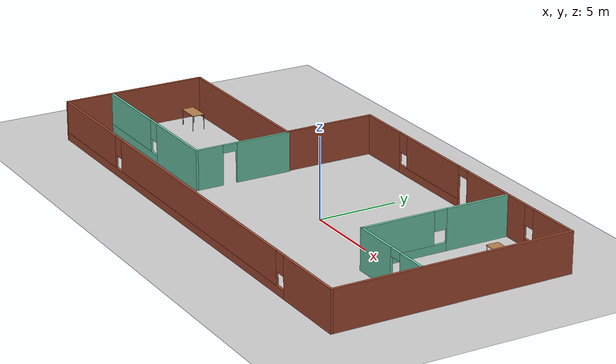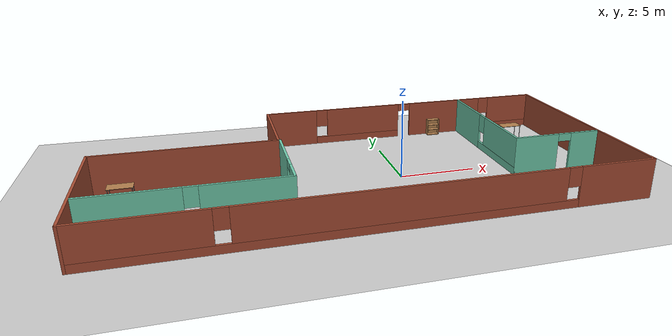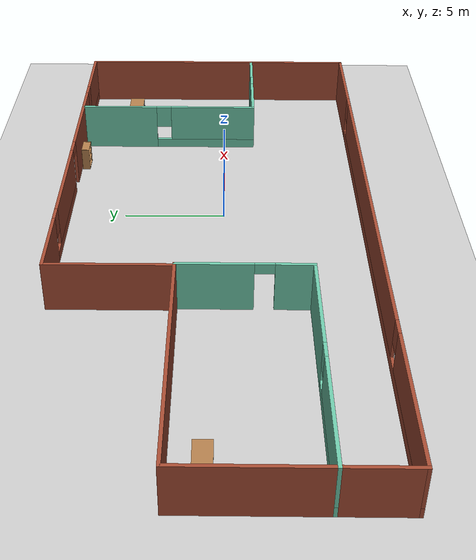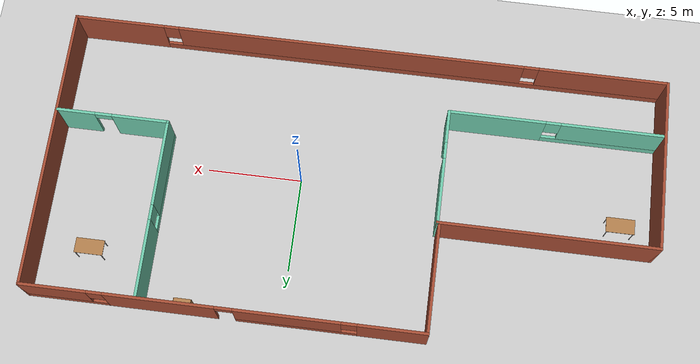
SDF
<sdf version="1.6">
 <world name="default">
  <light name="sun" type="directional">
   <pose>0 0 10 0 -0 0</pose>
   <diffuse>0.8 0.8 0.8 1</diffuse>
   <specular>0.2 0.2 0.2 1</specular>
   <attenuation>
    <range>1000</range>
    <constant>0.9</constant>
    <linear>0.01</linear>
    <quadratic>0.001</quadratic>
   </attenuation>
   <direction>-0.5 0.1 -0.9</direction>
  </light>
  <model name="ground_plane">
   <static>1</static>
   <link name="link">
    <collision name="collision">
     <geometry><plane><normal>0 0 1</normal><size>100 100</size></plane></geometry>
     <surface>
      <contact><collide_bitmask>65535</collide_bitmask></contact>
      <friction><ode><mu>100</mu><mu2>50</mu2></ode></friction>
     </surface>
    </collision>
    <visual name="visual">
     <cast_shadows>0</cast_shadows>
     <geometry><plane><normal>0 0 1</normal><size>100 100</size></plane></geometry>
     <material>
      <script><uri>file://media/materials/scripts/gazebo.material</uri><name>Gazebo/Grey</name></script>
     </material>
    </visual>
   </link>
  </model>
  <gravity>0 0 -9.8</gravity>
  <magnetic_field>6e-06 2.3e-05 -4.2e-05</magnetic_field>
  <atmosphere type="adiabatic"/>
  <physics name="default_physics" default="0" type="ode">
   <max_step_size>0.001</max_step_size>
   <real_time_factor>1</real_time_factor>
   <real_time_update_rate>1000</real_time_update_rate>
  </physics>
  <scene><ambient>0.4 0.4 0.4 1</ambient><background>0.7 0.7 0.7 1</background><shadows>1</shadows></scene>
  <spherical_coordinates>
   <surface_model>EARTH_WGS84</surface_model>
   <latitude_deg>0</latitude_deg>
   <longitude_deg>0</longitude_deg>
   <elevation>0</elevation>
   <heading_deg>0</heading_deg>
  </spherical_coordinates>
  <model name="building">
   <pose>-2.81591 0.44118 0 0 -0 0</pose>
   <link name="Wall_0">
    <collision name="Wall_0_Collision">
     <geometry><box><size>5.75 0.15 2.5</size></box></geometry>
     <pose>0 0 1.25 0 -0 0</pose>
    </collision>
    <visual name="Wall_0_Visual">
     <pose>0 0 1.25 0 -0 0</pose>
     <geometry><box><size>5.75 0.15 2.5</size></box></geometry>
     <material>
      <script><uri>file://media/materials/scripts/gazebo.material</uri><name>Gazebo/Bricks</name></script>
      <ambient>1 1 1 1</ambient>
     </material>
     <meta><layer>0</layer></meta>
    </visual>
    <pose>-4.675 4.625 0 0 -0 1.5708</pose>
   </link>
   <link name="Wall_1">
    <pose>5.625 7.425 0 0 -0 0</pose>
    <visual name="Wall_1_Visual_0">
     <pose>-8.57489 0 1.25 0 -0 0</pose>
     <geometry><box><size>3.60022 0.15 2.5</size></box></geometry>
     <material>
      <script><uri>file://media/materials/scripts/gazebo.material</uri><name>Gazebo/Bricks</name></script>
      <ambient>1 1 1 1</ambient>
     </material>
     <meta><layer>0</layer></meta>
    </visual>
    <collision name="Wall_1_Collision_0">
     <geometry><box><size>3.60022 0.15 2.5</size></box></geometry>
     <pose>-8.57489 0 1.25 0 -0 0</pose>
    </collision>
    <visual name="Wall_1_Visual_1">
     <pose>3.22716 0 1.25 0 -0 0</pose>
     <geometry><box><size>5.6773 0.15 2.5</size></box></geometry>
     <material>
      <script><uri>file://media/materials/scripts/gazebo.material</uri><name>Gazebo/Bricks</name></script>
      <ambient>1 1 1 1</ambient>
     </material>
     <meta><layer>0</layer></meta>
    </visual>
    <collision name="Wall_1_Collision_1">
     <geometry><box><size>5.6773 0.15 2.5</size></box></geometry>
     <pose>3.22716 0 1.25 0 -0 0</pose>
    </collision>
    <visual name="Wall_1_Visual_2">
     <pose>-3.64314 0 0.25 0 -0 0</pose>
     <geometry><box><size>6.2633 0.15 0.5</size></box></geometry>
     <material>
      <script><uri>file://media/materials/scripts/gazebo.material</uri><name>Gazebo/Bricks</name></script>
      <ambient>1 1 1 1</ambient>
     </material>
     <meta><layer>0</layer></meta>
    </visual>
    <collision name="Wall_1_Collision_2">
     <geometry><box><size>6.2633 0.15 0.5</size></box></geometry>
     <pose>-3.64314 0 0.25 0 -0 0</pose>
    </collision>
    <visual name="Wall_1_Visual_3">
     <pose>8.22041 0 0.25 0 -0 0</pose>
     <geometry><box><size>4.30918 0.15 0.5</size></box></geometry>
     <material>
      <script><uri>file://media/materials/scripts/gazebo.material</uri><name>Gazebo/Bricks</name></script>
      <ambient>1 1 1 1</ambient>
     </material>
     <meta><layer>0</layer></meta>
    </visual>
    <collision name="Wall_1_Collision_3">
     <geometry><box><size>4.30918 0.15 0.5</size></box></geometry>
     <pose>8.22041 0 0.25 0 -0 0</pose>
    </collision>
    <visual name="Wall_1_Visual_4">
     <pose>-3.24314 0 1.5 0 -0 0</pose>
     <geometry><box><size>5.46329 0.15 2</size></box></geometry>
     <material>
      <script><uri>file://media/materials/scripts/gazebo.material</uri><name>Gazebo/Bricks</name></script>
      <ambient>1 1 1 1</ambient>
     </material>
     <meta><layer>0</layer></meta>
    </visual>
    <collision name="Wall_1_Collision_4">
     <geometry><box><size>5.46329 0.15 2</size></box></geometry>
     <pose>-3.24314 0 1.5 0 -0 0</pose>
    </collision>
    <visual name="Wall_1_Visual_5">
     <pose>-3.24314 0 1.5 0 -0 0</pose>
     <geometry><box><size>5.46329 0.15 2</size></box></geometry>
     <material>
      <script><uri>file://media/materials/scripts/gazebo.material</uri><name>Gazebo/Bricks</name></script>
      <ambient>1 1 1 1</ambient>
     </material>
     <meta><layer>0</layer></meta>
    </visual>
    <collision name="Wall_1_Collision_5">
     <geometry><box><size>5.46329 0.15 2</size></box></geometry>
     <pose>-3.24314 0 1.5 0 -0 0</pose>
    </collision>
    <visual name="Wall_1_Visual_6">
     <pose>8.62041 0 1.5 0 -0 0</pose>
     <geometry><box><size>3.50918 0.15 2</size></box></geometry>
     <material>
      <script><uri>file://media/materials/scripts/gazebo.material</uri><name>Gazebo/Bricks</name></script>
      <ambient>1 1 1 1</ambient>
     </material>
     <meta><layer>0</layer></meta>
    </visual>
    <collision name="Wall_1_Collision_6">
     <geometry><box><size>3.50918 0.15 2</size></box></geometry>
     <pose>8.62041 0 1.5 0 -0 0</pose>
    </collision>
    <visual name="Wall_1_Visual_7">
     <pose>-6.37478 0 1.9 0 -0 0</pose>
     <geometry><box><size>0.8 0.15 1.2</size></box></geometry>
     <material>
      <script><uri>file://media/materials/scripts/gazebo.material</uri><name>Gazebo/Bricks</name></script>
      <ambient>1 1 1 1</ambient>
     </material>
     <meta><layer>0</layer></meta>
    </visual>
    <collision name="Wall_1_Collision_7">
     <geometry><box><size>0.8 0.15 1.2</size></box></geometry>
     <pose>-6.37478 0 1.9 0 -0 0</pose>
    </collision>
    <visual name="Wall_1_Visual_8">
     <pose>6.46582 0 1.9 0 -0 0</pose>
     <geometry><box><size>0.8 0.15 1.2</size></box></geometry>
     <material>
      <script><uri>file://media/materials/scripts/gazebo.material</uri><name>Gazebo/Bricks</name></script>
      <ambient>1 1 1 1</ambient>
     </material>
     <meta><layer>0</layer></meta>
    </visual>
    <collision name="Wall_1_Collision_8">
     <geometry><box><size>0.8 0.15 1.2</size></box></geometry>
     <pose>6.46582 0 1.9 0 -0 0</pose>
    </collision>
    <visual name="Wall_1_Visual_9">
     <pose>-0.061489 0 2.25 0 -0 0</pose>
     <geometry><box><size>0.9 0.15 0.5</size></box></geometry>
     <material>
      <script><uri>file://media/materials/scripts/gazebo.material</uri><name>Gazebo/Bricks</name></script>
      <ambient>1 1 1 1</ambient>
     </material>
     <meta><layer>0</layer></meta>
    </visual>
    <collision name="Wall_1_Collision_9">
     <geometry><box><size>0.9 0.15 0.5</size></box></geometry>
     <pose>-0.061489 0 2.25 0 -0 0</pose>
    </collision>
    <visual name="Wall_1_Visual_10">
     <pose>-0.061489 0 2.25 0 -0 0</pose>
     <geometry><box><size>0.9 0.15 0.5</size></box></geometry>
     <material>
      <script><uri>file://media/materials/scripts/gazebo.material</uri><name>Gazebo/Bricks</name></script>
      <ambient>1 1 1 1</ambient>
     </material>
     <meta><layer>0</layer></meta>
    </visual>
    <collision name="Wall_1_Collision_10">
     <geometry><box><size>0.9 0.15 0.5</size></box></geometry>
     <pose>-0.061489 0 2.25 0 -0 0</pose>
    </collision>
   </link>
   <link name="Wall_10">
    <pose>10.0042 2.65278 0 0 0 -1.5708</pose>
    <visual name="Wall_10_Visual_0">
     <pose>-2.7189 0 1.25 0 -0 0</pose>
     <geometry><box><size>4.0622 0.15 2.5</size></box></geometry>
     <material>
      <script><uri>file://media/materials/scripts/gazebo.material</uri><name>Gazebo/Grey</name></script>
      <ambient>0.435294 0.796078 0.67451 1</ambient>
     </material>
     <meta><layer>0</layer></meta>
    </visual>
    <collision name="Wall_10_Collision_0">
     <geometry><box><size>4.0622 0.15 2.5</size></box></geometry>
     <pose>-2.7189 0 1.25 0 -0 0</pose>
    </collision>
    <visual name="Wall_10_Visual_1">
     <pose>2.0311 0 0.25 0 -0 0</pose>
     <geometry><box><size>5.4378 0.15 0.5</size></box></geometry>
     <material>
      <script><uri>file://media/materials/scripts/gazebo.material</uri><name>Gazebo/Grey</name></script>
      <ambient>0.435294 0.796078 0.67451 1</ambient>
     </material>
     <meta><layer>0</layer></meta>
    </visual>
    <collision name="Wall_10_Collision_1">
     <geometry><box><size>5.4378 0.15 0.5</size></box></geometry>
     <pose>2.0311 0 0.25 0 -0 0</pose>
    </collision>
    <visual name="Wall_10_Visual_2">
     <pose>2.4311 0 1.5 0 -0 0</pose>
     <geometry><box><size>4.63779 0.15 2</size></box></geometry>
     <material>
      <script><uri>file://media/materials/scripts/gazebo.material</uri><name>Gazebo/Grey</name></script>
      <ambient>0.435294 0.796078 0.67451 1</ambient>
     </material>
     <meta><layer>0</layer></meta>
    </visual>
    <collision name="Wall_10_Collision_2">
     <geometry><box><size>4.63779 0.15 2</size></box></geometry>
     <pose>2.4311 0 1.5 0 -0 0</pose>
    </collision>
    <visual name="Wall_10_Visual_3">
     <pose>-0.287795 0 1.9 0 -0 0</pose>
     <geometry><box><size>0.8 0.15 1.2</size></box></geometry>
     <material>
      <script><uri>file://media/materials/scripts/gazebo.material</uri><name>Gazebo/Grey</name></script>
      <ambient>0.435294 0.796078 0.67451 1</ambient>
     </material>
     <meta><layer>0</layer></meta>
    </visual>
    <collision name="Wall_10_Collision_3">
     <geometry><box><size>0.8 0.15 1.2</size></box></geometry>
     <pose>-0.287795 0 1.9 0 -0 0</pose>
    </collision>
   </link>
   <link name="Wall_11">
    <pose>12.9292 -2.02222 0 0 -0 0</pose>
    <visual name="Wall_11_Visual_0">
     <pose>-1.47542 0 1.25 0 -0 0</pose>
     <geometry><box><size>3.04916 0.15 2.5</size></box></geometry>
     <material>
      <script><uri>file://media/materials/scripts/gazebo.material</uri><name>Gazebo/Grey</name></script>
      <ambient>0.435294 0.796078 0.67451 1</ambient>
     </material>
     <meta><layer>0</layer></meta>
    </visual>
    <collision name="Wall_11_Collision_0">
     <geometry><box><size>3.04916 0.15 2.5</size></box></geometry>
     <pose>-1.47542 0 1.25 0 -0 0</pose>
    </collision>
    <visual name="Wall_11_Visual_1">
     <pose>1.97458 0 1.25 0 -0 0</pose>
     <geometry><box><size>2.05084 0.15 2.5</size></box></geometry>
     <material>
      <script><uri>file://media/materials/scripts/gazebo.material</uri><name>Gazebo/Grey</name></script>
      <ambient>0.435294 0.796078 0.67451 1</ambient>
     </material>
     <meta><layer>0</layer></meta>
    </visual>
    <collision name="Wall_11_Collision_1">
     <geometry><box><size>2.05084 0.15 2.5</size></box></geometry>
     <pose>1.97458 0 1.25 0 -0 0</pose>
    </collision>
    <visual name="Wall_11_Visual_2">
     <pose>0.49916 0 2.25 0 -0 0</pose>
     <geometry><box><size>0.9 0.15 0.5</size></box></geometry>
     <material>
      <script><uri>file://media/materials/scripts/gazebo.material</uri><name>Gazebo/Grey</name></script>
      <ambient>0.435294 0.796078 0.67451 1</ambient>
     </material>
     <meta><layer>0</layer></meta>
    </visual>
    <collision name="Wall_11_Collision_2">
     <geometry><box><size>0.9 0.15 0.5</size></box></geometry>
     <pose>0.49916 0 2.25 0 -0 0</pose>
    </collision>
   </link>
   <link name="Wall_2">
    <collision name="Wall_2_Collision">
     <geometry><box><size>15 0.15 2.5</size></box></geometry>
     <pose>0 0 1.25 0 -0 0</pose>
    </collision>
    <visual name="Wall_2_Visual">
     <pose>0 0 1.25 0 -0 0</pose>
     <geometry><box><size>15 0.15 2.5</size></box></geometry>
     <material>
      <script><uri>file://media/materials/scripts/gazebo.material</uri><name>Gazebo/Bricks</name></script>
      <ambient>1 1 1 1</ambient>
     </material>
     <meta><layer>0</layer></meta>
    </visual>
    <pose>15.925 0 0 0 0 -1.5708</pose>
   </link>
   <link name="Wall_3">
    <pose>0 -7.425 0 0 -0 3.14159</pose>
    <visual name="Wall_3_Visual_0">
     <pose>-13.5766 0 1.25 0 -0 0</pose>
     <geometry><box><size>4.84675 0.15 2.5</size></box></geometry>
     <material>
      <script><uri>file://media/materials/scripts/gazebo.material</uri><name>Gazebo/Bricks</name></script>
      <ambient>1 1 1 1</ambient>
     </material>
     <meta><layer>0</layer></meta>
    </visual>
    <collision name="Wall_3_Collision_0">
     <geometry><box><size>4.84675 0.15 2.5</size></box></geometry>
     <pose>-13.5766 0 1.25 0 -0 0</pose>
    </collision>
    <visual name="Wall_3_Visual_1">
     <pose>2.42337 0 0.25 0 -0 0</pose>
     <geometry><box><size>27.1533 0.15 0.5</size></box></geometry>
     <material>
      <script><uri>file://media/materials/scripts/gazebo.material</uri><name>Gazebo/Bricks</name></script>
      <ambient>1 1 1 1</ambient>
     </material>
     <meta><layer>0</layer></meta>
    </visual>
    <collision name="Wall_3_Collision_1">
     <geometry><box><size>27.1533 0.15 0.5</size></box></geometry>
     <pose>2.42337 0 0.25 0 -0 0</pose>
    </collision>
    <visual name="Wall_3_Visual_2">
     <pose>-1.04255 0 1.5 0 -0 0</pose>
     <geometry><box><size>18.6214 0.15 2</size></box></geometry>
     <material>
      <script><uri>file://media/materials/scripts/gazebo.material</uri><name>Gazebo/Bricks</name></script>
      <ambient>1 1 1 1</ambient>
     </material>
     <meta><layer>0</layer></meta>
    </visual>
    <collision name="Wall_3_Collision_2">
     <geometry><box><size>18.6214 0.15 2</size></box></geometry>
     <pose>-1.04255 0 1.5 0 -0 0</pose>
    </collision>
    <visual name="Wall_3_Visual_3">
     <pose>12.5341 0 1.5 0 -0 0</pose>
     <geometry><box><size>6.93185 0.15 2</size></box></geometry>
     <material>
      <script><uri>file://media/materials/scripts/gazebo.material</uri><name>Gazebo/Bricks</name></script>
      <ambient>1 1 1 1</ambient>
     </material>
     <meta><layer>0</layer></meta>
    </visual>
    <collision name="Wall_3_Collision_3">
     <geometry><box><size>6.93185 0.15 2</size></box></geometry>
     <pose>12.5341 0 1.5 0 -0 0</pose>
    </collision>
    <visual name="Wall_3_Visual_4">
     <pose>-10.7533 0 1.9 0 -0 0</pose>
     <geometry><box><size>0.8 0.15 1.2</size></box></geometry>
     <material>
      <script><uri>file://media/materials/scripts/gazebo.material</uri><name>Gazebo/Bricks</name></script>
      <ambient>1 1 1 1</ambient>
     </material>
     <meta><layer>0</layer></meta>
    </visual>
    <collision name="Wall_3_Collision_4">
     <geometry><box><size>0.8 0.15 1.2</size></box></geometry>
     <pose>-10.7533 0 1.9 0 -0 0</pose>
    </collision>
    <visual name="Wall_3_Visual_5">
     <pose>8.66815 0 1.9 0 -0 0</pose>
     <geometry><box><size>0.8 0.15 1.2</size></box></geometry>
     <material>
      <script><uri>file://media/materials/scripts/gazebo.material</uri><name>Gazebo/Bricks</name></script>
      <ambient>1 1 1 1</ambient>
     </material>
     <meta><layer>0</layer></meta>
    </visual>
    <collision name="Wall_3_Collision_5">
     <geometry><box><size>0.8 0.15 1.2</size></box></geometry>
     <pose>8.66815 0 1.9 0 -0 0</pose>
    </collision>
   </link>
   <link name="Wall_4">
    <collision name="Wall_4_Collision">
     <geometry><box><size>9.25 0.15 2.5</size></box></geometry>
     <pose>0 0 1.25 0 -0 0</pose>
    </collision>
    <visual name="Wall_4_Visual">
     <pose>0 0 1.25 0 -0 0</pose>
     <geometry><box><size>9.25 0.15 2.5</size></box></geometry>
     <material>
      <script><uri>file://media/materials/scripts/gazebo.material</uri><name>Gazebo/Bricks</name></script>
      <ambient>1 1 1 1</ambient>
     </material>
     <meta><layer>0</layer></meta>
    </visual>
    <pose>-15.925 -2.875 0 0 -0 1.5708</pose>
   </link>
   <link name="Wall_5">
    <collision name="Wall_5_Collision">
     <geometry><box><size>11.5 0.15 2.5</size></box></geometry>
     <pose>0 0 1.25 0 -0 0</pose>
    </collision>
    <visual name="Wall_5_Visual">
     <pose>0 0 1.25 0 -0 0</pose>
     <geometry><box><size>11.5 0.15 2.5</size></box></geometry>
     <material>
      <script><uri>file://media/materials/scripts/gazebo.material</uri><name>Gazebo/Bricks</name></script>
      <ambient>1 1 1 1</ambient>
     </material>
     <meta><layer>0</layer></meta>
    </visual>
    <pose>-10.25 1.675 0 0 -0 0</pose>
   </link>
   <link name="Wall_7">
    <pose>-4.575 -1.375 0 0 0 -1.5708</pose>
    <visual name="Wall_7_Visual_0">
     <pose>-1.35042 0 1.25 0 -0 0</pose>
     <geometry><box><size>3.54916 0.15 2.5</size></box></geometry>
     <material>
      <script><uri>file://media/materials/scripts/gazebo.material</uri><name>Gazebo/Grey</name></script>
      <ambient>0.435294 0.796078 0.67451 1</ambient>
     </material>
     <meta><layer>0</layer></meta>
    </visual>
    <collision name="Wall_7_Collision_0">
     <geometry><box><size>3.54916 0.15 2.5</size></box></geometry>
     <pose>-1.35042 0 1.25 0 -0 0</pose>
    </collision>
    <visual name="Wall_7_Visual_1">
     <pose>2.22458 0 1.25 0 -0 0</pose>
     <geometry><box><size>1.80083 0.15 2.5</size></box></geometry>
     <material>
      <script><uri>file://media/materials/scripts/gazebo.material</uri><name>Gazebo/Grey</name></script>
      <ambient>0.435294 0.796078 0.67451 1</ambient>
     </material>
     <meta><layer>0</layer></meta>
    </visual>
    <collision name="Wall_7_Collision_1">
     <geometry><box><size>1.80083 0.15 2.5</size></box></geometry>
     <pose>2.22458 0 1.25 0 -0 0</pose>
    </collision>
    <visual name="Wall_7_Visual_2">
     <pose>0.874165 0 2.25 0 -0 0</pose>
     <geometry><box><size>0.9 0.15 0.5</size></box></geometry>
     <material>
      <script><uri>file://media/materials/scripts/gazebo.material</uri><name>Gazebo/Grey</name></script>
      <ambient>0.435294 0.796078 0.67451 1</ambient>
     </material>
     <meta><layer>0</layer></meta>
    </visual>
    <collision name="Wall_7_Collision_2">
     <geometry><box><size>0.9 0.15 0.5</size></box></geometry>
     <pose>0.874165 0 2.25 0 -0 0</pose>
    </collision>
   </link>
   <link name="Wall_8">
    <pose>-10.25 -4.425 0 0 -0 3.14159</pose>
    <visual name="Wall_8_Visual_0">
     <pose>-3.17039 0 1.25 0 -0 0</pose>
     <geometry><box><size>5.15922 0.15 2.5</size></box></geometry>
     <material>
      <script><uri>file://media/materials/scripts/gazebo.material</uri><name>Gazebo/Grey</name></script>
      <ambient>0.435294 0.796078 0.67451 1</ambient>
     </material>
     <meta><layer>0</layer></meta>
    </visual>
    <collision name="Wall_8_Collision_0">
     <geometry><box><size>5.15922 0.15 2.5</size></box></geometry>
     <pose>-3.17039 0 1.25 0 -0 0</pose>
    </collision>
    <visual name="Wall_8_Visual_1">
     <pose>2.57961 0 0.25 0 -0 0</pose>
     <geometry><box><size>6.34078 0.15 0.5</size></box></geometry>
     <material>
      <script><uri>file://media/materials/scripts/gazebo.material</uri><name>Gazebo/Grey</name></script>
      <ambient>0.435294 0.796078 0.67451 1</ambient>
     </material>
     <meta><layer>0</layer></meta>
    </visual>
    <collision name="Wall_8_Collision_1">
     <geometry><box><size>6.34078 0.15 0.5</size></box></geometry>
     <pose>2.57961 0 0.25 0 -0 0</pose>
    </collision>
    <visual name="Wall_8_Visual_2">
     <pose>2.97961 0 1.5 0 -0 0</pose>
     <geometry><box><size>5.54078 0.15 2</size></box></geometry>
     <material>
      <script><uri>file://media/materials/scripts/gazebo.material</uri><name>Gazebo/Grey</name></script>
      <ambient>0.435294 0.796078 0.67451 1</ambient>
     </material>
     <meta><layer>0</layer></meta>
    </visual>
    <collision name="Wall_8_Collision_2">
     <geometry><box><size>5.54078 0.15 2</size></box></geometry>
     <pose>2.97961 0 1.5 0 -0 0</pose>
    </collision>
    <visual name="Wall_8_Visual_3">
     <pose>-0.190782 0 1.9 0 -0 0</pose>
     <geometry><box><size>0.8 0.15 1.2</size></box></geometry>
     <material>
      <script><uri>file://media/materials/scripts/gazebo.material</uri><name>Gazebo/Grey</name></script>
      <ambient>0.435294 0.796078 0.67451 1</ambient>
     </material>
     <meta><layer>0</layer></meta>
    </visual>
    <collision name="Wall_8_Collision_3">
     <geometry><box><size>0.8 0.15 1.2</size></box></geometry>
     <pose>-0.190782 0 1.9 0 -0 0</pose>
    </collision>
   </link>
   <static>1</static>
  </model>
  <model name="table">
   <static>1</static>
   <link name="link">
    <collision name="surface">
     <pose>0 0 1 0 -0 0</pose>
     <geometry><box><size>1.5 0.8 0.03</size></box></geometry>
     <surface><friction><ode><mu>0.6</mu><mu2>0.6</mu2></ode></friction></surface>
    </collision>
    <visual name="visual1">
     <pose>0 0 1 0 -0 0</pose>
     <geometry><box><size>1.5 0.8 0.03</size></box></geometry>
     <material>
      <script><uri>file://media/materials/scripts/gazebo.material</uri><name>Gazebo/Wood</name></script>
     </material>
    </visual>
    <collision name="front_left_leg">
     <pose>0.68 0.38 0.5 0 -0 0</pose>
     <geometry><cylinder><radius>0.02</radius><length>1</length></cylinder></geometry>
    </collision>
    <visual name="front_left_leg">
     <pose>0.68 0.38 0.5 0 -0 0</pose>
     <geometry><cylinder><radius>0.02</radius><length>1</length></cylinder></geometry>
     <material>
      <script><uri>file://media/materials/scripts/gazebo.material</uri><name>Gazebo/Grey</name></script>
     </material>
    </visual>
    <collision name="front_right_leg">
     <pose>0.68 -0.38 0.5 0 -0 0</pose>
     <geometry><cylinder><radius>0.02</radius><length>1</length></cylinder></geometry>
    </collision>
    <visual name="front_right_leg">
     <pose>0.68 -0.38 0.5 0 -0 0</pose>
     <geometry><cylinder><radius>0.02</radius><length>1</length></cylinder></geometry>
     <material>
      <script><uri>file://media/materials/scripts/gazebo.material</uri><name>Gazebo/Grey</name></script>
     </material>
    </visual>
    <collision name="back_right_leg">
     <pose>-0.68 -0.38 0.5 0 -0 0</pose>
     <geometry><cylinder><radius>0.02</radius><length>1</length></cylinder></geometry>
    </collision>
    <visual name="back_right_leg">
     <pose>-0.68 -0.38 0.5 0 -0 0</pose>
     <geometry><cylinder><radius>0.02</radius><length>1</length></cylinder></geometry>
     <material>
      <script><uri>file://media/materials/scripts/gazebo.material</uri><name>Gazebo/Grey</name></script>
     </material>
    </visual>
    <collision name="back_left_leg">
     <pose>-0.68 0.38 0.5 0 -0 0</pose>
     <geometry><cylinder><radius>0.02</radius><length>1</length></cylinder></geometry>
    </collision>
    <visual name="back_left_leg">
     <pose>-0.68 0.38 0.5 0 -0 0</pose>
     <geometry><cylinder><radius>0.02</radius><length>1</length></cylinder></geometry>
     <material>
      <script><uri>file://media/materials/scripts/gazebo.material</uri><name>Gazebo/Grey</name></script>
     </material>
    </visual>
   </link>
   <pose>-16.9222 0.691645 0 0 -0 0</pose>
  </model>
  <model name="table_0">
   <static>1</static>
   <link name="link">
    <collision name="surface">
     <pose>0 0 1 0 -0 0</pose>
     <geometry><box><size>1.5 0.8 0.03</size></box></geometry>
     <surface><friction><ode><mu>0.6</mu><mu2>0.6</mu2></ode></friction></surface>
    </collision>
    <visual name="visual1">
     <pose>0 0 1 0 -0 0</pose>
     <geometry><box><size>1.5 0.8 0.03</size></box></geometry>
     <material>
      <script><uri>file://media/materials/scripts/gazebo.material</uri><name>Gazebo/Wood</name></script>
     </material>
    </visual>
    <collision name="front_left_leg">
     <pose>0.68 0.38 0.5 0 -0 0</pose>
     <geometry><cylinder><radius>0.02</radius><length>1</length></cylinder></geometry>
    </collision>
    <visual name="front_left_leg">
     <pose>0.68 0.38 0.5 0 -0 0</pose>
     <geometry><cylinder><radius>0.02</radius><length>1</length></cylinder></geometry>
     <material>
      <script><uri>file://media/materials/scripts/gazebo.material</uri><name>Gazebo/Grey</name></script>
     </material>
    </visual>
    <collision name="front_right_leg">
     <pose>0.68 -0.38 0.5 0 -0 0</pose>
     <geometry><cylinder><radius>0.02</radius><length>1</length></cylinder></geometry>
    </collision>
    <visual name="front_right_leg">
     <pose>0.68 -0.38 0.5 0 -0 0</pose>
     <geometry><cylinder><radius>0.02</radius><length>1</length></cylinder></geometry>
     <material>
      <script><uri>file://media/materials/scripts/gazebo.material</uri><name>Gazebo/Grey</name></script>
     </material>
    </visual>
    <collision name="back_right_leg">
     <pose>-0.68 -0.38 0.5 0 -0 0</pose>
     <geometry><cylinder><radius>0.02</radius><length>1</length></cylinder></geometry>
    </collision>
    <visual name="back_right_leg">
     <pose>-0.68 -0.38 0.5 0 -0 0</pose>
     <geometry><cylinder><radius>0.02</radius><length>1</length></cylinder></geometry>
     <material>
      <script><uri>file://media/materials/scripts/gazebo.material</uri><name>Gazebo/Grey</name></script>
     </material>
    </visual>
    <collision name="back_left_leg">
     <pose>-0.68 0.38 0.5 0 -0 0</pose>
     <geometry><cylinder><radius>0.02</radius><length>1</length></cylinder></geometry>
    </collision>
    <visual name="back_left_leg">
     <pose>-0.68 0.38 0.5 0 -0 0</pose>
     <geometry><cylinder><radius>0.02</radius><length>1</length></cylinder></geometry>
     <material>
      <script><uri>file://media/materials/scripts/gazebo.material</uri><name>Gazebo/Grey</name></script>
     </material>
    </visual>
   </link>
   <pose>10.3311 5.19875 0 0 -0 0</pose>
  </model>
  <model name="bookshelf">
   <static>1</static>
   <link name="link">
    <inertial><mass>1</mass></inertial>
    <collision name="back">
     <pose>0 0.005 0.6 0 -0 0</pose>
     <geometry><box><size>0.9 0.01 1.2</size></box></geometry>
    </collision>
    <visual name="visual1">
     <pose>0 0.005 0.6 0 -0 0</pose>
     <geometry><box><size>0.9 0.01 1.2</size></box></geometry>
     <material>
      <script><uri>file://media/materials/scripts/gazebo.material</uri><name>Gazebo/Wood</name></script>
     </material>
    </visual>
    <collision name="left_side">
     <pose>0.45 -0.195 0.6 0 -0 0</pose>
     <geometry><box><size>0.02 0.4 1.2</size></box></geometry>
    </collision>
    <visual name="visual2">
     <pose>0.45 -0.195 0.6 0 -0 0</pose>
     <geometry><box><size>0.02 0.4 1.2</size></box></geometry>
     <material>
      <script><uri>file://media/materials/scripts/gazebo.material</uri><name>Gazebo/Wood</name></script>
     </material>
    </visual>
    <collision name="right_side">
     <pose>-0.45 -0.195 0.6 0 -0 0</pose>
     <geometry><box><size>0.02 0.4 1.2</size></box></geometry>
    </collision>
    <visual name="visual3">
     <pose>-0.45 -0.195 0.6 0 -0 0</pose>
     <geometry><box><size>0.02 0.4 1.2</size></box></geometry>
     <material>
      <script><uri>file://media/materials/scripts/gazebo.material</uri><name>Gazebo/Wood</name></script>
     </material>
    </visual>
    <collision name="bottom">
     <pose>0 -0.195 0.03 0 -0 0</pose>
     <geometry><box><size>0.88 0.4 0.06</size></box></geometry>
    </collision>
    <visual name="visual4">
     <pose>0 -0.195 0.03 0 -0 0</pose>
     <geometry><box><size>0.88 0.4 0.06</size></box></geometry>
     <material>
      <script><uri>file://media/materials/scripts/gazebo.material</uri><name>Gazebo/Wood</name></script>
     </material>
    </visual>
    <collision name="top">
     <pose>0 -0.195 1.19 0 -0 0</pose>
     <geometry><box><size>0.88 0.4 0.02</size></box></geometry>
    </collision>
    <visual name="visual5">
     <pose>0 -0.195 1.19 0 -0 0</pose>
     <geometry><box><size>0.88 0.4 0.02</size></box></geometry>
     <material>
      <script><uri>file://media/materials/scripts/gazebo.material</uri><name>Gazebo/Wood</name></script>
     </material>
    </visual>
    <collision name="low_shelf">
     <pose>0 -0.195 0.43 0 -0 0</pose>
     <geometry><box><size>0.88 0.4 0.02</size></box></geometry>
    </collision>
    <visual name="visual6">
     <pose>0 -0.195 0.43 0 -0 0</pose>
     <geometry><box><size>0.88 0.4 0.02</size></box></geometry>
     <material>
      <script><uri>file://media/materials/scripts/gazebo.material</uri><name>Gazebo/Wood</name></script>
     </material>
    </visual>
    <collision name="high_shelf">
     <pose>0 -0.195 0.8 0 -0 0</pose>
     <geometry><box><size>0.88 0.4 0.02</size></box></geometry>
    </collision>
    <visual name="visual7">
     <pose>0 -0.195 0.8 0 -0 0</pose>
     <geometry><box><size>0.88 0.4 0.02</size></box></geometry>
     <material>
      <script><uri>file://media/materials/scripts/gazebo.material</uri><name>Gazebo/Wood</name></script>
     </material>
    </visual>
   </link>
   <pose>5.0458 7.74774 0 0 -0 0</pose>
  </model>
 </world>
</sdf>
